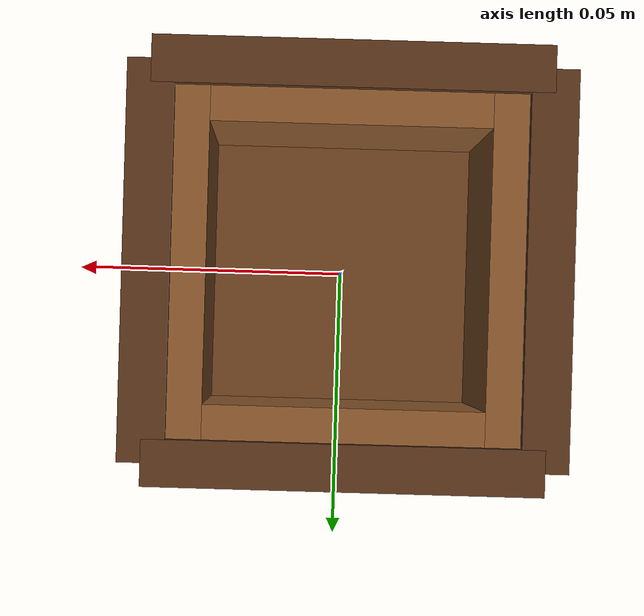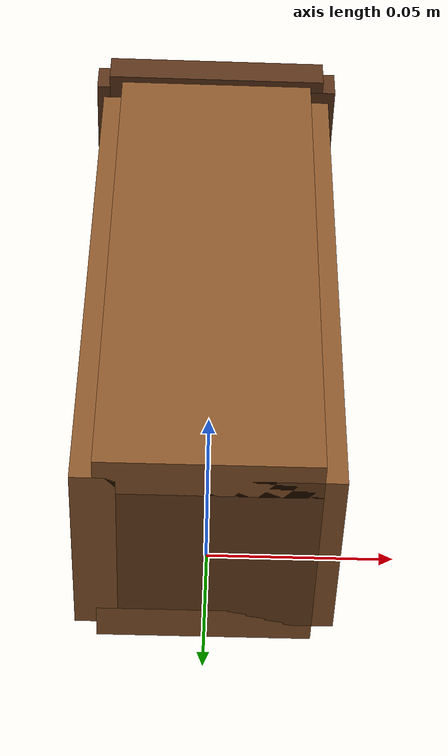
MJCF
<mujoco model="knife_rack">
  <worldbody>
    <body>
      <body name="object">
        <site name="contain_region" type="box" pos="0 0 0.085"
              quat="1 0 0 0" size="0.045 0.045 0.135" rgba="0 0 0 0"/>
        <geom name="rack_bottom" type="box" pos="0 0 0.008"
              size="0.030 0.030 0.008" rgba="0.42 0.25 0.12 1"
              density="5000" friction="1.5 0.02 0.001"
              solimp="0.99 0.99 0.001" solref="0.005 1" group="0"/>
        <geom name="rack_bottom_visual" type="box" pos="0 0 0.008"
              size="0.030 0.030 0.008" rgba="0.42 0.25 0.12 1"
              contype="0" conaffinity="0" group="1"/>
        <geom name="left_wall" type="box" pos="-0.030 0 0.082"
              size="0.006 0.030 0.082" rgba="0.54 0.34 0.17 1"
              density="5000" friction="1.5 0.02 0.001"
              solimp="0.99 0.99 0.001" solref="0.005 1" group="0"/>
        <geom name="right_wall" type="box" pos="0.030 0 0.082"
              size="0.006 0.030 0.082" rgba="0.54 0.34 0.17 1"
              density="5000" friction="1.5 0.02 0.001"
              solimp="0.99 0.99 0.001" solref="0.005 1" group="0"/>
        <geom name="front_wall" type="box" pos="0 -0.030 0.082"
              size="0.030 0.006 0.082" rgba="0.54 0.34 0.17 1"
              density="5000" friction="1.5 0.02 0.001"
              solimp="0.99 0.99 0.001" solref="0.005 1" group="0"/>
        <geom name="back_wall" type="box" pos="0 0.030 0.082"
              size="0.030 0.006 0.082" rgba="0.54 0.34 0.17 1"
              density="5000" friction="1.5 0.02 0.001"
              solimp="0.99 0.99 0.001" solref="0.005 1" group="0"/>
        <geom name="left_wall_visual" type="box" pos="-0.030 0 0.082"
              size="0.006 0.030 0.082" rgba="0.54 0.34 0.17 1"
              contype="0" conaffinity="0" group="1"/>
        <geom name="right_wall_visual" type="box" pos="0.030 0 0.082"
              size="0.006 0.030 0.082" rgba="0.54 0.34 0.17 1"
              contype="0" conaffinity="0" group="1"/>
        <geom name="front_wall_visual" type="box" pos="0 -0.030 0.082"
              size="0.030 0.006 0.082" rgba="0.54 0.34 0.17 1"
              contype="0" conaffinity="0" group="1"/>
        <geom name="back_wall_visual" type="box" pos="0 0.030 0.082"
              size="0.030 0.006 0.082" rgba="0.54 0.34 0.17 1"
              contype="0" conaffinity="0" group="1"/>
        <geom name="top_front_rim" type="box" pos="0 -0.034 0.168"
              size="0.034 0.004 0.005" rgba="0.35 0.20 0.10 1"
              contype="0" conaffinity="0" group="1"/>
        <geom name="top_back_rim" type="box" pos="0 0.034 0.168"
              size="0.034 0.004 0.005" rgba="0.35 0.20 0.10 1"
              contype="0" conaffinity="0" group="1"/>
        <geom name="top_left_rim" type="box" pos="-0.034 0 0.168"
              size="0.004 0.034 0.005" rgba="0.35 0.20 0.10 1"
              contype="0" conaffinity="0" group="1"/>
        <geom name="top_right_rim" type="box" pos="0.034 0 0.168"
              size="0.004 0.034 0.005" rgba="0.35 0.20 0.10 1"
              contype="0" conaffinity="0" group="1"/>
      </body>
      <site name="bottom_site" pos="0 0 -0.002" size="0.003" rgba="0 0 0 0"/>
      <site name="top_site" pos="0 0 0.174" size="0.003" rgba="0 0 0 0"/>
      <site name="horizontal_radius_site" pos="0.034 0 0.082"
            size="0.003" rgba="0 0 0 0"/>
    </body>
  </worldbody>
</mujoco>
